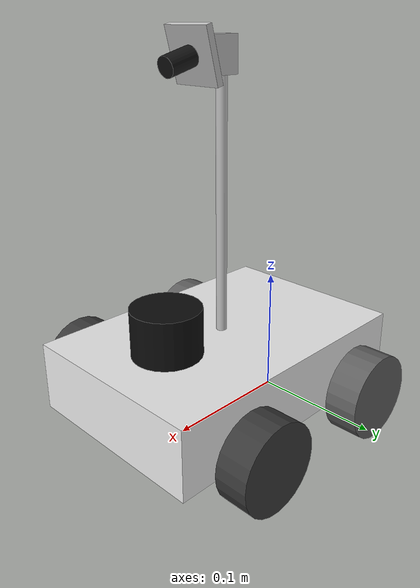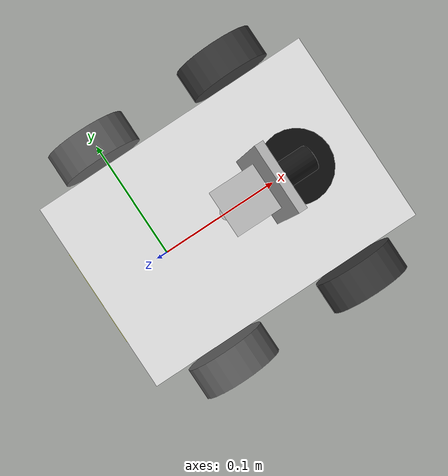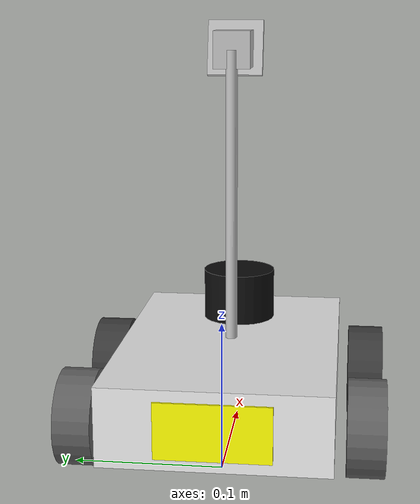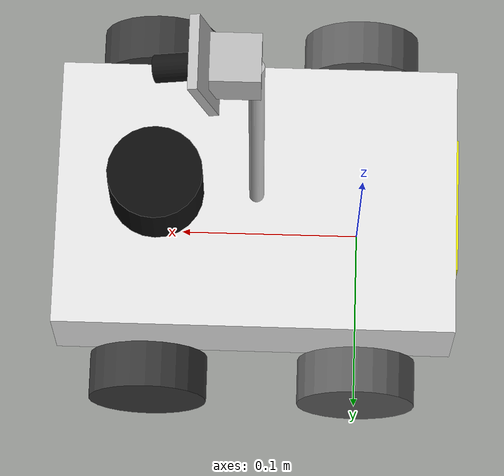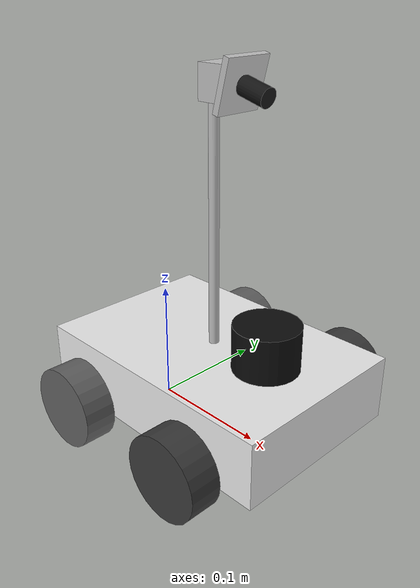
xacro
<?xml version="1.0"?>
<robot name="ackermann_car" xmlns:xacro="http://www.ros.org/wiki/xacro">

  <!-- 是否加载 Gazebo 插件（在纯 RViz 可视化时可设为 false，避免报缺少插件的警告） -->
  <xacro:arg name="use_gazebo" default="true"/>
  <!-- 是否加载阿克曼驱动插件。排查"轮子位置异常"问题时可设为 false，
       先确认没有驱动插件、纯被动物理下轮子是否稳定，用于排除法定位问题。 -->
  <xacro:arg name="use_ackermann_plugin" default="true"/>

  <xacro:include filename="$(find car_description)/urdf/common_properties.xacro"/>
  <xacro:include filename="$(find car_description)/urdf/materials.xacro"/>
  <xacro:include filename="$(find car_description)/urdf/inertial_macros.xacro"/>
  <xacro:include filename="$(find car_description)/urdf/base.xacro"/>
  <xacro:include filename="$(find car_description)/urdf/wheel.xacro"/>
  <xacro:include filename="$(find car_description)/urdf/lidar.xacro"/>
  <xacro:include filename="$(find car_description)/urdf/camera.xacro"/>

  <xacro:include filename="$(find car_description)/urdf/car.gazebo.xacro"/>

</robot>

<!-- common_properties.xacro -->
<robot xmlns:xacro="http://www.ros.org/wiki/xacro">

  <xacro:property name="PI" value="3.1415926535897931"/>

  <!-- ================ 底盘（上下两层）几何参数 ================ -->
  <xacro:property name="chassis_length"      value="0.220"/>   <!-- 车长 220mm -->
  <xacro:property name="chassis_width"       value="0.150"/>   <!-- 车宽 150mm，-->
  <xacro:property name="ground_clearance"    value="0.020"/>   <!-- 下层底盘离地 20mm -->
  <xacro:property name="chassis_depth"       value="0.053"/>   <!-- 底盘高5.3厘米 -->

  <!-- ================ 轮子参数 ================ -->
  <xacro:property name="wheel_radius"        value="0.0325"/>  <!-- 直径65mm -->
  <xacro:property name="wheel_width"         value="0.025"/>   <!-- 宽度25mm -->
  <xacro:property name="front_overhang"      value="0.020"/>   <!-- 前轮距车头20mm -->

  <xacro:property name="wheel_y_offset"      value="0.095"/>  <!-- 【假设值】左右轮中心到车体中轴线距离，-->

  <!--转向节（连接轴和车轮的虚拟件，用于前轮转向） -->

  <xacro:property name="steer_link_radius"   value="0.006"/>   <!-- 虚拟转向节尺寸，仅用于可视化【假设值】 -->
  <xacro:property name="steer_link_length"   value="0.010"/>
  <!-- 转向节质量不能给太小：太轻的连杆夹在重得多的车轮和底盘之间 -->

  <xacro:property name="mass_steer_link"     value="0.03"/>

  <!-- ================ 支撑杆 ================ -->
  <xacro:property name="pole_height"        value="0.200"/>   <!-- 支撑杆长度 200mm -->
  <xacro:property name="pole_radius"        value="0.004"/>   <!-- 杆子半径，细杆 -->
  <xacro:property name="mass_pole"          value="0.020"/>   <!-- 撑杆质量 -->

  <!-- ================ 摄像头安装臂参数（新：摄像头直接固定在底盘上，与杆子分离） ================ -->

  <xacro:property name="camera_mount_length" value="0.035"/>  <!-- 安装臂长度，从底盘前沿向前伸出35mm -->
  <xacro:property name="camera_mount_size"   value="0.010"/>  <!-- 安装臂方形截面 10×10mm -->
  <xacro:property name="mass_camera_mount"   value="0.120"/>  <!-- 安装臂质量 -->

  <!-- 转接头（连接装置）参数 -->
  <xacro:property name="adapter_size" value="0.025"/>   <!-- 25mm 方块 -->
  <xacro:property name="adapter_mass" value="0.010"/>
  <!-- ================ USB免驱摄像头本体参数 ================ -->
  <!-- 底座38x38mm方形，镜头筒Φ14mm×22mm -->
  <xacro:property name="camera_base_size"   value="0.038"/>   <!-- 底座 38×38mm -->
  <xacro:property name="camera_base_th"     value="0.005"/>   <!-- 底座厚度 -->
  <xacro:property name="camera_radius"      value="0.007"/>   <!-- 镜头筒直径14mm -->
  <xacro:property name="camera_length"      value="0.022"/>   <!-- 镜头筒长度22mm，沿光轴(前)方向 -->

  <xacro:property name="camera_base_tilt"     value="${PI/2}"/>
  <xacro:property name="camera_extra_downtilt" value="0.2618"/>
  <xacro:property name="camera_tilt_angle"    value="${camera_base_tilt + camera_extra_downtilt}"/>

  <xacro:property name="mass_camera_base"   value="0.020"/>   <!-- 【假设值】摄像头底座质量 -->
  <xacro:property name="mass_camera"        value="0.050"/>   <!-- 【假设值】摄像头本体质量 -->

  <!-- 前轴 / 后轴相对底盘中心(x=0)的位置 -->
  <xacro:property name="front_axle_x" value="${chassis_length/2 - front_overhang}"/>
  <xacro:property name="rear_axle_x"  value="${-chassis_length/2}"/>                    <!-- = -0.11，后轮与车尾平齐 -->
  <xacro:property name="wheelbase"    value="${front_axle_x - rear_axle_x}"/>

  <!-- ================ N10 雷达参数 ================ -->
  <xacro:property name="lidar_radius" value="0.026"/>   <!-- Φ52mm -->
  <xacro:property name="lidar_height" value="0.0361"/>  <!-- 36.1mm -->
  <xacro:property name="lidar_mass"   value="0.080"/>
  <!-- 雷达安装在上层前四分之一处，正中间 -->
  <xacro:property name="lidar_x" value="${chassis_length/2 - chassis_length/4}"/>  <!-- 距前边缘 1/4 车长 = 0.055 -->
  <xacro:property name="lidar_y" value="0.0"/>

  <!-- ================ 质量分配（总质量 2.14kg） ================ -->
  <xacro:property name="mass_total"          value="2.14"/>
  <xacro:property name="mass_wheel_front"    value="0.15"/>    <!-- 前轮单个质量 150g -->
  <xacro:property name="mass_wheel_rear"     value="0.10"/>    <!-- 后轮单个质量 100g -->
  <xacro:property name="mass_chassis"        value="1.280"/>   <!-- 【假设值】下层底盘（含电机/电池等） -->

  <!-- ================ 转向 / 摩擦 / 阻尼参数 ================ -->
  <xacro:property name="max_steer_angle"       value="0.5236"/>   <!-- 约30°最大转向角 -->
  <xacro:property name="steer_effort"          value="10.0"/>     <!-- 转向力矩，改正值 -->
  <xacro:property name="steer_velocity"        value="10.0"/>     <!-- 转向速度，改正值 -->
  <xacro:property name="wheel_effort"          value="10.0"/>     <!-- 驱动轮力矩，加大 -->
  <xacro:property name="wheel_velocity"        value="-1.0"/>     <!-- 滚动不限速 -->
  <xacro:property name="wheel_joint_damping"   value="0.01"/>     <!-- 关节阻尼，降低防卡 -->
  <xacro:property name="wheel_joint_friction"  value="0.01"/>     <!-- 关节摩擦，降低防卡 -->
  <xacro:property name="steer_joint_damping"   value="0.20"/>
  <xacro:property name="steer_joint_friction"  value="0.05"/>

  <!-- 轮胎与地面摩擦系数（Gazebo ODE 参数），橡胶轮胎典型值 -->
  <xacro:property name="wheel_mu1"        value="5.0"/>     <!-- 纵向摩擦，加大防打滑 -->
  <xacro:property name="wheel_mu2"        value="0.5"/>     <!-- 侧向摩擦，降低防前轮卡死 -->
  <xacro:property name="wheel_kp"         value="1e5"/>
  <xacro:property name="wheel_kd"         value="10.0"/>
  <xacro:property name="wheel_max_vel"    value="10.0"/>     <!-- 允许滑移速度，加大 -->
  <xacro:property name="wheel_min_depth"  value="0.001"/>

</robot>

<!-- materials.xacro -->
<robot xmlns:xacro="http://www.ros.org/wiki/xacro">

  <material name="chassis_grey">
    <color rgba="0.30 0.30 0.32 1.0"/>
  </material>

  <material name="wheel_black">
    <color rgba="0.10 0.10 0.10 1.0"/>
  </material>

  <material name="lidar_dark">
    <color rgba="0.05 0.05 0.05 1.0"/>
  </material>

  <material name="steer_orange">
    <color rgba="0.90 0.45 0.05 1.0"/>
  </material>

  <material name="pole_silver">
    <color rgba="0.75 0.75 0.75 1.0"/>
  </material>

  <material name="camera_black">
    <color rgba="0.08 0.08 0.08 1.0"/>
  </material>

</robot>

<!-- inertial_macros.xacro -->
<robot xmlns:xacro="http://www.ros.org/wiki/xacro">
  <!-- ============================================================
       常用惯量计算宏。均假设为均匀密度的规则几何体。
       ============================================================ -->

  <!-- 长方体惯量：xyz为原点(可偏移)，size为长宽高（沿x,y,z） -->
  <xacro:macro name="inertial_box" params="mass x y z *origin">
    <inertial>
      <xacro:insert_block name="origin"/>
      <mass value="${mass}"/>
      <inertia ixx="${(1/12) * mass * (y*y + z*z)}" ixy="0.0" ixz="0.0"
               iyy="${(1/12) * mass * (x*x + z*z)}" iyz="0.0"
               izz="${(1/12) * mass * (x*x + y*y)}"/>
    </inertial>
  </xacro:macro>

  <!-- 圆柱体惯量，旋转轴沿 Z 轴（例如雷达、支柱、竖直安装件） -->
  <xacro:macro name="inertial_cylinder_z" params="mass radius length *origin">
    <inertial>
      <xacro:insert_block name="origin"/>
      <mass value="${mass}"/>
      <inertia ixx="${(1/12) * mass * (3*radius*radius + length*length)}" ixy="0.0" ixz="0.0"
               iyy="${(1/12) * mass * (3*radius*radius + length*length)}" iyz="0.0"
               izz="${(1/2) * mass * radius * radius}"/>
    </inertial>
  </xacro:macro>

  <!-- 圆柱体惯量，旋转轴沿 Y 轴（例如左右滚动的车轮） -->
  <xacro:macro name="inertial_cylinder_y" params="mass radius length *origin">
    <inertial>
      <xacro:insert_block name="origin"/>
      <mass value="${mass}"/>
      <inertia ixx="${(1/12) * mass * (3*radius*radius + length*length)}" ixy="0.0" ixz="0.0"
               iyy="${(1/2) * mass * radius * radius}" iyz="0.0"
               izz="${(1/12) * mass * (3*radius*radius + length*length)}"/>
    </inertial>
  </xacro:macro>

  <!-- 圆柱体惯量，旋转轴沿 X 轴（例如朝前的摄像头镜头筒） -->
  <xacro:macro name="inertial_cylinder_x" params="mass radius length *origin">
    <inertial>
      <xacro:insert_block name="origin"/>
      <mass value="${mass}"/>
      <inertia ixx="${(1/2) * mass * radius * radius}" ixy="0.0" ixz="0.0"
               iyy="${(1/12) * mass * (3*radius*radius + length*length)}" iyz="0.0"
               izz="${(1/12) * mass * (3*radius*radius + length*length)}"/>
    </inertial>
  </xacro:macro>

  <!-- 球体惯量（备用，暂未使用） -->
  <xacro:macro name="inertial_sphere" params="mass radius *origin">
    <inertial>
      <xacro:insert_block name="origin"/>
      <mass value="${mass}"/>
      <inertia ixx="${(2/5) * mass * radius * radius}" ixy="0.0" ixz="0.0"
               iyy="${(2/5) * mass * radius * radius}" iyz="0.0"
               izz="${(2/5) * mass * radius * radius}"/>
    </inertial>
  </xacro:macro>

</robot>

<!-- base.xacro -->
<robot xmlns:xacro="http://www.ros.org/wiki/xacro">

 <link name="base_footprint"/>

    <link name="base_link">
    </link>
    <joint name="base_joint" type="fixed">
        <parent link="base_footprint" />
        <child link="base_link" />
        <origin xyz="0.0575 0.0 0.0" rpy="0 0 0" />
    </joint>

    <link name="chassis_link">
        <inertial>
            <origin xyz="-0.025 0 -0.0076" rpy="0 0 0" />
            <mass value="${mass_chassis}" />
            <inertia ixx="${mass_chassis/12 * (chassis_width*chassis_width + chassis_depth*chassis_depth)}"
                ixy="0" ixz="0"
                iyy="${mass_chassis/12 * (chassis_length*chassis_length + chassis_depth*chassis_depth)}" iyz="0"
                izz="${mass_chassis/12 * (chassis_width*chassis_width + chassis_length*chassis_length)}" />
        </inertial>
        <visual>
            <origin xyz="0 0 0" rpy="0 0 0" />
            <geometry>
                <box size="${chassis_length} ${chassis_width} ${chassis_depth}" />
            </geometry>
        </visual>
        <collision>
            <origin xyz="0 0 0" rpy="0 0 0" />
            <geometry>
                <box size="${chassis_length} ${chassis_width} ${chassis_depth}" />
            </geometry>
        </collision>
    </link>
    <joint name="chassis_joint" type="fixed">
        <parent link="base_link" />
        <child link="chassis_link" />
        <origin xyz="0 0 ${ground_clearance + chassis_depth/2}" rpy="0 0 0" />
    </joint>

</robot>

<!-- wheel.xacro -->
<robot xmlns:xacro="http://www.ros.org/wiki/xacro">

  <!-- ================ 前左轮 ================ -->
  <link name="steer_left_link">
        <inertial>
            <origin xyz="0 0.008 0" rpy="0 0 0" />
            <mass value="${mass_steer_link}" />
            <inertia
                ixx="${mass_steer_link/12*(3*wheel_radius*wheel_radius + wheel_width*wheel_width)}"
                ixy="0" ixz="0"
                iyy="${mass_steer_link/12*(3*wheel_radius*wheel_radius + wheel_width*wheel_width)}"
                iyz="0" izz="${mass_steer_link/2 * wheel_radius*wheel_radius}" />
        </inertial>
    </link>
    <joint name="steer_left_joint" type="revolute">
        <origin xyz="0.0575 0.095 -0.014" rpy="0 0 0" />
        <parent link="chassis_link" />
        <child link="steer_left_link" />
        <axis xyz="0 0 1" />
        <limit upper="${max_steer_angle}" lower="${-max_steer_angle}" effort="${steer_effort}" velocity="${steer_velocity}" />
    </joint>
    <link name="front_left_wheel_link">
        <inertial>
            <origin xyz="0 0 -0.008" rpy="0 0 0" />
            <mass value="${mass_wheel_front}" />
            <inertia
                ixx="${mass_wheel_front/12*(3*wheel_radius*wheel_radius + wheel_width*wheel_width)}"
                ixy="0" ixz="0"
                iyy="${mass_wheel_front/12*(3*wheel_radius*wheel_radius + wheel_width*wheel_width)}"
                iyz="0" izz="${mass_wheel_front/2 * wheel_radius*wheel_radius}" />
        </inertial>
        <visual>
            <origin xyz="0 0 0" rpy="0 0 0" />
            <geometry>
                <cylinder radius="${wheel_radius}" length="${wheel_width}" />
            </geometry>
            <material name="">
                <color rgba="0.223529411764706 0.223529411764706 0.223529411764706 1" />
            </material>
        </visual>
        <collision>
            <origin xyz="0 0 0" rpy="0 0 0" />
            <geometry>
                <cylinder radius="${wheel_radius}" length="${wheel_width}" />
            </geometry>
        </collision>
    </link>
    <joint name="front_left_wheel_joint" type="continuous">
        <origin xyz="0 0 0" rpy="1.5708 0 0" />
        <parent link="steer_left_link" />
        <child link="front_left_wheel_link" />
        <axis xyz="0 0 -1" />
        <dynamics friction="${wheel_joint_friction}" damping="${wheel_joint_damping}" />
        <limit effort="${wheel_effort}" velocity="${wheel_velocity}" />
    </joint>

    <!-- ================ 前右轮 ================ -->
    <link name="steer_right_link">
        <inertial>
            <origin xyz="0 -0.008 0" rpy="0 0 0" />
            <mass value="${mass_steer_link}" />
            <inertia
                ixx="${mass_steer_link/12*(3*wheel_radius*wheel_radius + wheel_width*wheel_width)}"
                ixy="0" ixz="0"
                iyy="${mass_steer_link/12*(3*wheel_radius*wheel_radius + wheel_width*wheel_width)}"
                iyz="0" izz="${mass_steer_link/2 * wheel_radius*wheel_radius}" />
        </inertial>
    </link>
    <joint name="steer_right_joint" type="revolute">
        <origin xyz="0.0575 -0.095 -0.014" rpy="0 0 0" />
        <parent link="chassis_link" />
        <child link="steer_right_link" />
        <axis xyz="0 0 1" />
        <limit upper="${max_steer_angle}" lower="${-max_steer_angle}" effort="${steer_effort}" velocity="${steer_velocity}" />

    </joint>
    <link name="front_right_wheel_link">
        <inertial>
            <origin xyz="0 0 -0.008" rpy="0 0 0" />
            <mass value="${mass_wheel_front}" />
            <inertia
                ixx="${mass_wheel_front/12*(3*wheel_radius*wheel_radius + wheel_width*wheel_width)}"
                ixy="0" ixz="0"
                iyy="${mass_wheel_front/12*(3*wheel_radius*wheel_radius + wheel_width*wheel_width)}"
                iyz="0" izz="${mass_wheel_front/2 * wheel_radius*wheel_radius}" />
        </inertial>
        <visual>
            <origin xyz="0 0 0" rpy="0 0 0" />
            <geometry>
                <cylinder radius="${wheel_radius}" length="${wheel_width}" />
            </geometry>
            <material name="">
                <color rgba="0.223529411764706 0.223529411764706 0.223529411764706 1" />
            </material>
        </visual>
        <collision>
            <origin xyz="0 0 0" rpy="0 0 0" />
            <geometry>
                <cylinder radius="${wheel_radius}" length="${wheel_width}" />
            </geometry>
        </collision>
    </link>
    <joint name="front_right_wheel_joint" type="continuous">
        <origin xyz="0 0 0" rpy="-1.5708 0 0" />
        <parent link="steer_right_link" />
        <child link="front_right_wheel_link" />
        <axis xyz="0 0 1" />
        <dynamics friction="${wheel_joint_friction}" damping="${wheel_joint_damping}" />
        <limit effort="${wheel_effort}" velocity="${wheel_velocity}" />
    </joint>

    <!-- ================ 后左轮 ================ -->
    <link name="rear_left_wheel_link">
        <inertial>
            <origin xyz="0 0 -0.008" rpy="0 0 0" />
            <mass value="${mass_wheel_rear}" />
            <inertia
                ixx="${mass_wheel_rear/12*(3*wheel_radius*wheel_radius + wheel_width*wheel_width)}"
                ixy="0" ixz="0"
                iyy="${mass_wheel_rear/12*(3*wheel_radius*wheel_radius + wheel_width*wheel_width)}"
                iyz="0" izz="${mass_wheel_rear/2 * wheel_radius*wheel_radius}" />
        </inertial>
        <visual>
            <origin xyz="0 0 0" rpy="0 0 0" />
            <geometry>
                <cylinder radius="${wheel_radius}" length="${wheel_width}" />
            </geometry>
            <material name="">
                <color rgba="0.37647 0.37647 0.37647 1" />
            </material>
        </visual>
        <collision>
            <origin xyz="0 0 0" rpy="0 0 0" />
            <geometry>
                <cylinder radius="${wheel_radius}" length="${wheel_width}" />
            </geometry>
        </collision>
    </link>
    <joint name="rear_left_wheel_joint" type="continuous">
        <origin xyz="-0.0575 0.095 -0.014" rpy="1.5708 0 0" />
        <parent link="chassis_link" />
        <child link="rear_left_wheel_link" />
        <axis xyz="0 0 -1" />
        <dynamics friction="${wheel_joint_friction}" damping="${wheel_joint_damping}" />
        <limit effort="${wheel_effort}" velocity="${wheel_velocity}" />
    </joint>

    <!-- ================ 后右轮 ================ -->
    <link name="rear_right_wheel_link">
        <inertial>
            <origin xyz="0 0 -0.008" rpy="0 0 0" />
            <mass value="${mass_wheel_rear}" />
            <inertia
                ixx="${mass_wheel_rear/12*(3*wheel_radius*wheel_radius + wheel_width*wheel_width)}"
                ixy="0" ixz="0"
                iyy="${mass_wheel_rear/12*(3*wheel_radius*wheel_radius + wheel_width*wheel_width)}"
                iyz="0" izz="${mass_wheel_rear/2 * wheel_radius*wheel_radius}" />
        </inertial>
        <visual>
            <origin xyz="0 0 0" rpy="0 0 0" />
            <geometry>
                <cylinder radius="${wheel_radius}" length="${wheel_width}" />
            </geometry>
            <material name="">
                <color rgba="0.37647 0.37647 0.37647 1" />
            </material>
        </visual>
        <collision>
            <origin xyz="0 0 0" rpy="0 0 0" />
            <geometry>
                <cylinder radius="${wheel_radius}" length="${wheel_width}" />
            </geometry>
        </collision>
    </link>
    <joint name="rear_right_wheel_joint" type="continuous">
        <origin xyz="-0.0575 -0.095 -0.014" rpy="-1.5708 0 0" />
        <parent link="chassis_link" />
        <child link="rear_right_wheel_link" />
        <axis xyz="0 0 1" />
        <dynamics friction="${wheel_joint_friction}" damping="${wheel_joint_damping}" />
        <limit effort="${wheel_effort}" velocity="${wheel_velocity}" />
    </joint>

</robot>

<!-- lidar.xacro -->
<robot xmlns:xacro="http://www.ros.org/wiki/xacro">

  <!-- ============================================================
       N10 型号雷达：Φ52 × 36.1mm，80g
       安装位置：上层底盘前1/4处，左右居中
       ============================================================ -->

  <joint name="lidar_joint" type="fixed">
    <parent link="chassis_link"/>
    <child link="lidar_link"/>
    <!-- 坐在上层底盘上表面：z = 上层板厚/2 + 雷达自身高度的一半 -->
    <origin xyz="${lidar_x} ${lidar_y} ${chassis_depth/2 + lidar_height/2}" rpy="0 0 0"/>
  </joint>

  <link name="lidar_link">
    <visual>
      <origin xyz="0 0 0" rpy="0 0 0"/>
      <geometry>
        <cylinder radius="${lidar_radius}" length="${lidar_height}"/>
      </geometry>
      <material name="lidar_dark"/>
    </visual>
    <collision>
      <origin xyz="0 0 0" rpy="0 0 0"/>
      <geometry>
        <cylinder radius="${lidar_radius}" length="${lidar_height}"/>
      </geometry>
    </collision>
    <xacro:inertial_cylinder_z mass="${lidar_mass}" radius="${lidar_radius}" length="${lidar_height}">
      <origin xyz="0 0 0" rpy="0 0 0"/>
    </xacro:inertial_cylinder_z>
  </link>

  <!-- ================ Gazebo: 2D 激光雷达传感器插件 ================
       N10 为单线360°扫描雷达，此处参数为常见2D激光雷达典型值【假设值】，
       请根据 N10 实际规格书（测距范围/角分辨率/频率）调整。 -->
  <gazebo reference="lidar_link">
    <material>Gazebo/FlatBlack</material>
    <sensor name="lidar_sensor" type="ray">
      <pose>0 0 0 0 0 0</pose>
      <!-- 默认关掉射线可视化：那一大片扇形蓝线会严重遮挡视野，
           让车身/车轮看起来像挤在一起。想看雷达扫描效果时改回 true 即可。 -->
      <visualize>true</visualize>
      <update_rate>15</update_rate>
      <ray>
        <scan>
          <horizontal>
            <samples>360</samples>
            <resolution>1</resolution>
            <min_angle>-3.14159</min_angle>
            <max_angle>3.14159</max_angle>
          </horizontal>
        </scan>
        <range>
          <min>0.12</min>
          <max>8.0</max>
          <resolution>0.01</resolution>
        </range>
        <noise>
          <type>gaussian</type>
          <mean>0.0</mean>
          <stddev>0.01</stddev>
        </noise>
      </ray>
      <plugin name="lidar_controller" filename="libgazebo_ros_ray_sensor.so">
        <ros>
          <namespace>/</namespace>
          <remapping>~/out:=scan</remapping>
        </ros>
        <output_type>sensor_msgs/LaserScan</output_type>
        <frame_name>lidar_link</frame_name>
      </plugin>
    </sensor>
  </gazebo>

</robot>

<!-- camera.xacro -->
<robot xmlns:xacro="http://www.ros.org/wiki/xacro">

  <!-- ================ 支撑杆 ================ -->
  <joint name="pole_joint" type="fixed">
    <parent link="chassis_link"/>
    <child link="pole_link"/>
    <origin xyz="0 0 ${chassis_depth/2 + pole_height/2}" rpy="0 0 0"/>
  </joint>

  <link name="pole_link">
    <visual>
      <origin xyz="0 0 0" rpy="0 0 0"/>
      <geometry>
        <cylinder radius="${pole_radius}" length="${pole_height}"/>
      </geometry>
      <material name="pole_silver"/>
    </visual>
    <collision>
      <origin xyz="0 0 0" rpy="0 0 0"/>
      <geometry>
        <cylinder radius="${pole_radius}" length="${pole_height}"/>
      </geometry>
    </collision>
    <xacro:inertial_cylinder_z mass="${mass_pole}" radius="${pole_radius}" length="${pole_height}">
      <origin xyz="0 0 0" rpy="0 0 0"/>
    </xacro:inertial_cylinder_z>
  </link>

  <!-- ================ 转接头（连接装置） ================ -->
  <joint name="adapter_joint" type="fixed">
    <parent link="pole_link"/>
    <child link="camera_adapter_link"/>
    <origin xyz="0.01 0 ${pole_height/2}" rpy="0 0 0"/>
  </joint>

  <link name="camera_adapter_link">
    <visual>
      <origin xyz="0 0 0" rpy="0 0 0"/>
      <geometry>
        <box size="0.025 0.025 0.025"/>
      </geometry>
      <material name="pole_silver"/>
    </visual>
    <collision>
      <origin xyz="0 0 0" rpy="0 0 0"/>
      <geometry>
        <box size="0.025 0.025 0.025"/>
      </geometry>
    </collision>
    <xacro:inertial_box mass="0.005" x="0.025" y="0.025" z="0.025">
      <origin xyz="0 0 0" rpy="0 0 0"/>
    </xacro:inertial_box>
  </link>

  <!-- ================ 摄像头底座：整体倾斜 15° ================
       关键：这里的 rpy 设置的就是整体的倾斜角度
       底座本身保持水平安装姿态（没有额外旋转），
       但整个关节被旋转了 15°，所以底座跟随倾斜 -->
  <joint name="camera_base_joint" type="fixed">
    <parent link="camera_adapter_link"/>
    <child link="camera_base_link"/>
    <!-- 从转接头向前伸出，并整体倾斜 15°（绕 Y 轴旋转） -->
    <origin xyz="0.015 0 0" rpy="0 ${camera_tilt_angle} 0"/>
  </joint>

  <link name="camera_base_link">
    <visual>
      <!-- 底座自身的几何是水平的，没有额外旋转 -->
      <origin xyz="0 0 0" rpy="0 0 0"/>
      <geometry>
        <box size="${camera_base_size} ${camera_base_size} ${camera_base_th}"/>
      </geometry>
      <material name="pole_silver"/>
    </visual>
    <collision>
      <origin xyz="0 0 0" rpy="0 0 0"/>
      <geometry>
        <box size="${camera_base_size} ${camera_base_size} ${camera_base_th}"/>
      </geometry>
    </collision>
    <xacro:inertial_box mass="${mass_camera_base}" x="${camera_base_size}" y="${camera_base_size}" z="${camera_base_th}">
      <origin xyz="0 0 0" rpy="0 0 0"/>
    </xacro:inertial_box>
  </link>

  <!-- ================ 摄像头本体：垂直于底座安装 ================
       关键：rpy="0 0 0"，没有任何旋转！
       摄像头相对于底座是垂直的（local Z 朝上），
       但因为底座本身已经倾斜了 15°，摄像头也跟着倾斜了 -->
  <joint name="camera_joint" type="fixed">
    <parent link="camera_base_link"/>
    <child link="camera_link"/>
    <!-- 垂直立在底座上，没有任何旋转 -->
    <origin xyz="0 0 ${camera_base_th/2 + camera_length/2}" rpy="0 0 0"/>
  </joint>

  <link name="camera_link">
    <visual>
      <!-- 圆柱体沿 local Z 方向，竖直向上 -->
      <origin xyz="0 0 0" rpy="0 0 0"/>
      <geometry>
        <cylinder radius="${camera_radius}" length="${camera_length}"/>
      </geometry>
      <material name="camera_black"/>
    </visual>
    <collision>
      <origin xyz="0 0 0" rpy="0 0 0"/>
      <geometry>
        <cylinder radius="${camera_radius}" length="${camera_length}"/>
      </geometry>
    </collision>
    <xacro:inertial_cylinder_z mass="${mass_camera}" radius="${camera_radius}" length="${camera_length}">
      <origin xyz="0 0 0" rpy="0 0 0"/>
    </xacro:inertial_cylinder_z>
  </link>

  <!-- ================ 光学坐标系 ================
       光轴方向：由于整体倾斜，光轴从朝前变成了朝前下方 15° -->
  <joint name="camera_optical_joint" type="fixed">
    <parent link="camera_link"/>
    <child link="camera_link_optical"/>
    <!-- 光学中心在镜头前端 -->
    <origin xyz="0 0 ${camera_length}" rpy="0 0 0"/>
  </joint>

  <link name="camera_link_optical"/>

  <!-- ================ Gazebo 传感器插件 ================ -->
  <gazebo reference="camera_link">
    <material>Gazebo/FlatBlack</material>
    <sensor name="camera_sensor" type="camera">
      <pose>0 0 0 0 0 0</pose>
      <visualize>true</visualize>
      <update_rate>30</update_rate>
      <camera>
        <horizontal_fov>1.089</horizontal_fov>
        <image>
          <width>640</width>
          <height>480</height>
          <format>R8G8B8</format>
        </image>
        <clip>
          <near>0.02</near>
          <far>50</far>
        </clip>
      </camera>
      <plugin name="camera_controller" filename="libgazebo_ros_camera.so">
        <ros>
          <namespace>/</namespace>
        </ros>
        <camera_name>camera</camera_name>
        <frame_name>camera_link_optical</frame_name>
      </plugin>
    </sensor>
  </gazebo>

</robot>

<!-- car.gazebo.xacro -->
<robot xmlns:xacro="http://www.ros.org/wiki/xacro">
    <!-- GAZEBO COLOUR -->
    <!-- Instead, we need to add gazebo tags for our links that refer to Gazebo materials -->
<!-- 底盘只保留材质，不设摩擦力（避免与wheel冲突） -->
    <gazebo reference="chassis_link">
        <material>Gazebo/White</material>
    </gazebo>

    <!-- 转向节只保留材质和适当的阻尼，不要写 mu1/mu2 -->
    <gazebo reference="steer_left_link">
        <material>Gazebo/Yellow</material>
    </gazebo>
    <gazebo reference="steer_right_link">
        <material>Gazebo/Yellow</material>
    </gazebo>

    <!-- 仅在四个最终的车轮 link 上定义一次摩擦力和接触参数 -->
    <gazebo reference="front_left_wheel_link">
        <material>Gazebo/Grey</material>
        <mu1>2.0</mu1>
        <mu2>2.0</mu2>
        <kp>1000000.0</kp>
        <kd>1.0</kd>
        <minDepth>0.001</minDepth>
    </gazebo>

    <gazebo reference="front_right_wheel_link">
        <material>Gazebo/Grey</material>
        <mu1>2.0</mu1>
        <mu2>2.0</mu2>
        <kp>100000.0</kp>
        <kd>1.0</kd>
        <minDepth>0.001</minDepth>
    </gazebo>

    <gazebo reference="rear_left_wheel_link">
        <material>Gazebo/Grey</material>
        <mu1>2.0</mu1>
        <mu2>2.0</mu2>
        <kp>1000000.0</kp>
        <kd>1.0</kd>
        <minDepth>0.001</minDepth>
    </gazebo>

    <gazebo reference="rear_right_wheel_link">
        <material>Gazebo/Grey</material>
        <mu1>2.0</mu1>
        <mu2>2.0</mu2>
        <kp>1000000.0</kp>
        <kd>1.0</kd>
        <minDepth>0.001</minDepth>
    </gazebo>

    <gazebo reference="virtual_steer_link">
        <material>Gazebo/Yellow</material>
    </gazebo>

    <!-- JOINT STATE PUBLISHER -->
    <!-- Gazebo requires the use of plugins to interact with other systems such as ROS. -->
    <gazebo>
        <plugin name="gazebo_ros_joint_state_publisher"
            filename="libgazebo_ros_joint_state_publisher.so">
            <update_rate>100</update_rate>
            <joint_name>front_left_wheel_joint</joint_name>
            <joint_name>front_right_wheel_joint</joint_name>
            <joint_name>rear_left_wheel_joint</joint_name>
            <joint_name>rear_right_wheel_joint</joint_name>
            <joint_name>steer_left_joint</joint_name>
            <joint_name>steer_right_joint</joint_name>
            <joint_name>virtual_steering_wheel_joint</joint_name>
        </plugin>
    </gazebo>

    <!-- This plugin will read a JointTrajectory message from the /set_joint_trajectory topic
            and move the machine accordingly. It's a bit clunky but it works. -->
    <gazebo>
        <plugin name="gazebo_ros_joint_pose_trajectory"
            filename="libgazebo_ros_joint_pose_trajectory.so">
            <update_rate>2</update_rate>
        </plugin>
    </gazebo>

    <!-- ACKERMANN DRIVE PLUGIN -->
    <gazebo>
        <plugin name='gazebo_ackermann_drive' filename='libgazebo_ros_ackermann_drive.so'>
            <ros>
                <remapping>cmd_vel:=cmd_vel</remapping>
                <remapping>odom:=odom</remapping>
                <remapping>distance:=distance/bot</remapping>
            </ros>

            <update_rate>100.0</update_rate>
                <wheel_base>0.20</wheel_base>
                <wheel_separation>0.19</wheel_separation>

            <!-- wheels -->
            <front_left_joint>front_left_wheel_joint</front_left_joint>
            <!-- wheels -->
            <front_left_joint>front_left_wheel_joint</front_left_joint>
            <front_right_joint>front_right_wheel_joint</front_right_joint>
            <rear_left_joint>rear_left_wheel_joint</rear_left_joint>
            <rear_right_joint>rear_right_wheel_joint</rear_right_joint>
            <left_steering_joint>steer_left_joint</left_steering_joint>
            <right_steering_joint>steer_right_joint</right_steering_joint>

            <!-- Max absolute steer angle for tyre in radians-->
            <!-- Any cmd_vel angular z greater than this would be capped -->
            <max_steer>0.383972</max_steer>

            <!-- Max absolute steering angle of steering wheel -->
            <max_steering_angle>1.570796</max_steering_angle>

            <!-- Max absolute linear speed in m/s -->
            <max_speed>5</max_speed>

            <!-- PID tuning -->
            <left_steering_pid_gain>10 0 0.1</left_steering_pid_gain>
            <left_steering_i_range>0 0</left_steering_i_range>
            <right_steering_pid_gain>10 0 0.1</right_steering_pid_gain>
            <right_steering_i_range>0 0</right_steering_i_range>
            <linear_velocity_pid_gain>0.1 0 0.0</linear_velocity_pid_gain>
            <linear_velocity_i_range>0 0</linear_velocity_i_range>

            <!-- output -->
            <publish_odom>true</publish_odom>
            <publish_odom_tf>true</publish_odom_tf>     <!-- Don't pubslish this when using robot
            localization -->
            <publish_wheel_tf>false</publish_wheel_tf>  <!-- Don't publish this. It will override all
            wheel frames to robot_base_frame parameter below.-->
            <publish_distance>true</publish_distance>

            <odometry_frame>odom</odometry_frame>
            <robot_base_frame>base_footprint</robot_base_frame>

        </plugin>
    </gazebo>

    <!-- Virtual Steering wheel -->
    <link name="virtual_steer_link">
        <visual>
            <origin xyz="0.0 0.0 0.0" rpy="0.0 0.0 0.0" />
            <geometry>
                <box size="0.003 0.075 0.0375" />
            </geometry>
            <material name="">
                <color rgba="1.0 1.0 0.0 1" />
            </material>
        </visual>
        <inertial>  <!-- Gazebo won't show this link without this inertial mass -->
            <origin xyz="0.0 0.0 0.0" rpy="0.0 0.0 0.0" />
            <mass value="0.001" />
            <inertia ixx="0.0" ixy="0.0" ixz="0.0" iyy="0.0" iyz="0.0" izz="0.0" />
        </inertial>
    </link>
    <joint name="virtual_steering_wheel_joint" type="revolute">
        <origin xyz="-0.11 0.0 0.0" rpy="0.0 0.0 0.0" />
        <parent link="chassis_link" />
        <child link="virtual_steer_link" />
        <axis xyz="-1 0 0" />
        <limit lower="-3" upper="3" effort="5" velocity="0.5" />
    </joint>

</robot>
